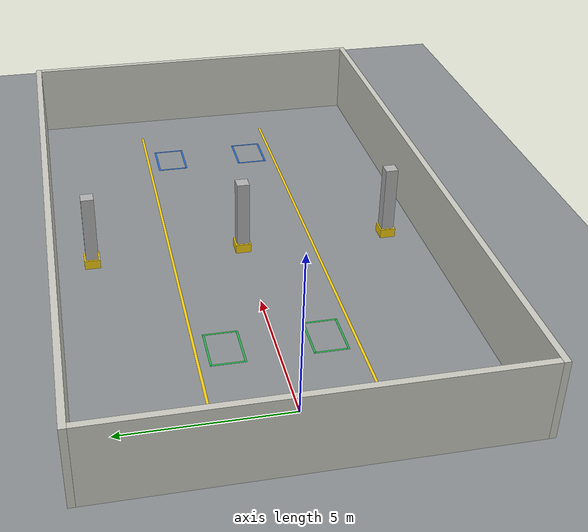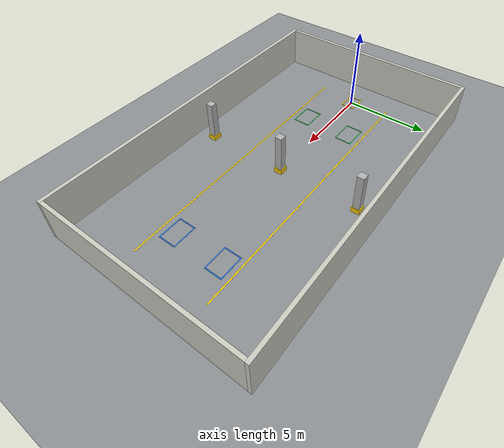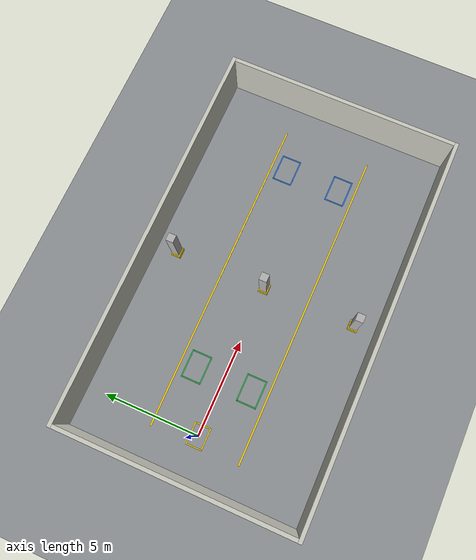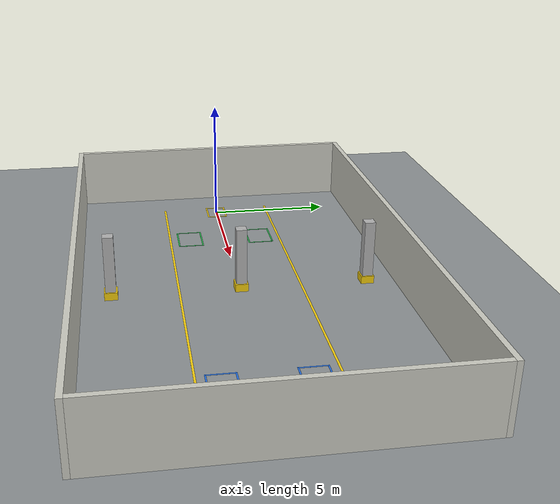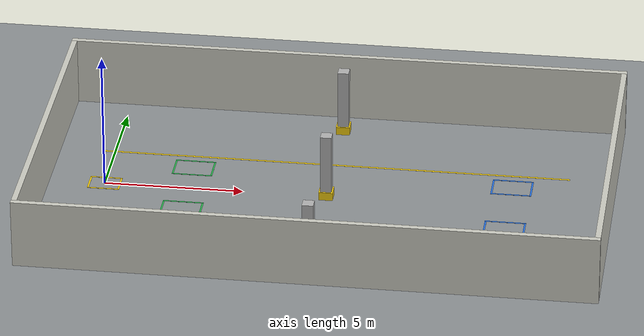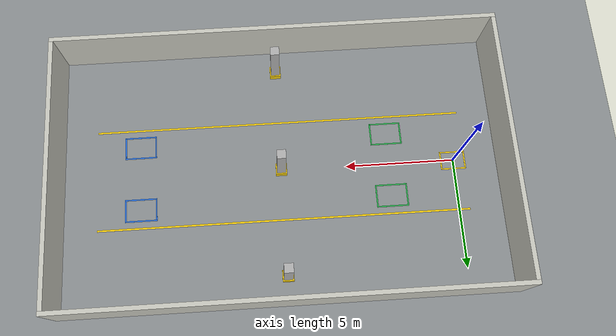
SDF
<sdf version="1.6">
 <world name="yektemak_warehouse">
  <gravity>0 0 -9.81</gravity>
  <plugin name="gazebo_ros_state" filename="libgazebo_ros_state.so">
   <ros><namespace>/gazebo</namespace></ros>
   <update_rate>20.0</update_rate>
  </plugin>
  <physics name="default_physics" type="ode">
   <max_step_size>0.001</max_step_size>
   <real_time_factor>1.0</real_time_factor>
   <real_time_update_rate>1000</real_time_update_rate>
  </physics>
  <scene>
   <ambient>0.55 0.55 0.55 1</ambient>
   <background>0.70 0.75 0.80 1</background>
   <shadows>true</shadows>
  </scene>
  <light type="directional" name="sun">
   <pose>0 0 10 0 0 0</pose>
   <diffuse>0.8 0.8 0.8 1</diffuse>
   <specular>0.2 0.2 0.2 1</specular>
   <direction>-0.4 0.3 -0.9</direction>
  </light>
  <model name="ground_plane">
   <static>true</static>
   <link name="link">
    <collision name="collision">
     <geometry><plane><normal>0 0 1</normal><size>60 60</size></plane></geometry>
     <surface><friction><ode><mu>1.0</mu><mu2>1.0</mu2></ode></friction></surface>
    </collision>
    <visual name="visual">
     <cast_shadows>false</cast_shadows>
     <geometry><plane><normal>0 0 1</normal><size>60 60</size></plane></geometry>
     <material>
      <ambient>0.44 0.46 0.46 1</ambient>
      <diffuse>0.55 0.57 0.58 1</diffuse>
      <specular>0.1 0.1 0.1 1</specular>
     </material>
    </visual>
   </link>
  </model>
  <model name="warehouse_building">
   <static>true</static>
   <link name="link">
    <collision name="wall_south_col">
     <pose>8 -6.1 1.25 0 0 0</pose>
     <geometry><box><size>20.4 0.2 2.5</size></box></geometry>
    </collision>
    <visual name="wall_south_vis">
     <pose>8 -6.1 1.25 0 0 0</pose>
     <geometry><box><size>20.4 0.2 2.5</size></box></geometry>
     <material>
      <ambient>0.64 0.64 0.61 1</ambient>
      <diffuse>0.8 0.8 0.76 1</diffuse>
      <specular>0.1 0.1 0.1 1</specular>
     </material>
    </visual>
    <collision name="wall_north_col">
     <pose>8 6.1 1.25 0 0 0</pose>
     <geometry><box><size>20.4 0.2 2.5</size></box></geometry>
    </collision>
    <visual name="wall_north_vis">
     <pose>8 6.1 1.25 0 0 0</pose>
     <geometry><box><size>20.4 0.2 2.5</size></box></geometry>
     <material>
      <ambient>0.64 0.64 0.61 1</ambient>
      <diffuse>0.8 0.8 0.76 1</diffuse>
      <specular>0.1 0.1 0.1 1</specular>
     </material>
    </visual>
    <collision name="wall_west_col">
     <pose>-2.1 0 1.25 0 0 0</pose>
     <geometry><box><size>0.2 12 2.5</size></box></geometry>
    </collision>
    <visual name="wall_west_vis">
     <pose>-2.1 0 1.25 0 0 0</pose>
     <geometry><box><size>0.2 12 2.5</size></box></geometry>
     <material>
      <ambient>0.64 0.64 0.61 1</ambient>
      <diffuse>0.8 0.8 0.76 1</diffuse>
      <specular>0.1 0.1 0.1 1</specular>
     </material>
    </visual>
    <collision name="wall_east_col">
     <pose>18.1 0 1.25 0 0 0</pose>
     <geometry><box><size>0.2 12 2.5</size></box></geometry>
    </collision>
    <visual name="wall_east_vis">
     <pose>18.1 0 1.25 0 0 0</pose>
     <geometry><box><size>0.2 12 2.5</size></box></geometry>
     <material>
      <ambient>0.64 0.64 0.61 1</ambient>
      <diffuse>0.8 0.8 0.76 1</diffuse>
      <specular>0.1 0.1 0.1 1</specular>
     </material>
    </visual>
    <collision name="column_0_col">
     <pose>8 0 1.25 0 0 0</pose>
     <geometry><box><size>0.4 0.4 2.5</size></box></geometry>
    </collision>
    <visual name="column_0_vis">
     <pose>8 0 1.25 0 0 0</pose>
     <geometry><box><size>0.4 0.4 2.5</size></box></geometry>
     <material>
      <ambient>0.56 0.56 0.56 1</ambient>
      <diffuse>0.7 0.7 0.7 1</diffuse>
      <specular>0.1 0.1 0.1 1</specular>
     </material>
    </visual>
    <collision name="column_guard_0_col">
     <pose>8 0 0.15 0 0 0</pose>
     <geometry><box><size>0.5 0.5 0.3</size></box></geometry>
    </collision>
    <visual name="column_guard_0_vis">
     <pose>8 0 0.15 0 0 0</pose>
     <geometry><box><size>0.5 0.5 0.3</size></box></geometry>
     <material>
      <ambient>0.76 0.64 0.04 1</ambient>
      <diffuse>0.95 0.8 0.05 1</diffuse>
      <specular>0.1 0.1 0.1 1</specular>
     </material>
    </visual>
    <collision name="column_1_col">
     <pose>8 4.9 1.25 0 0 0</pose>
     <geometry><box><size>0.4 0.4 2.5</size></box></geometry>
    </collision>
    <visual name="column_1_vis">
     <pose>8 4.9 1.25 0 0 0</pose>
     <geometry><box><size>0.4 0.4 2.5</size></box></geometry>
     <material>
      <ambient>0.56 0.56 0.56 1</ambient>
      <diffuse>0.7 0.7 0.7 1</diffuse>
      <specular>0.1 0.1 0.1 1</specular>
     </material>
    </visual>
    <collision name="column_guard_1_col">
     <pose>8 4.9 0.15 0 0 0</pose>
     <geometry><box><size>0.5 0.5 0.3</size></box></geometry>
    </collision>
    <visual name="column_guard_1_vis">
     <pose>8 4.9 0.15 0 0 0</pose>
     <geometry><box><size>0.5 0.5 0.3</size></box></geometry>
     <material>
      <ambient>0.76 0.64 0.04 1</ambient>
      <diffuse>0.95 0.8 0.05 1</diffuse>
      <specular>0.1 0.1 0.1 1</specular>
     </material>
    </visual>
    <collision name="column_2_col">
     <pose>8 -4.9 1.25 0 0 0</pose>
     <geometry><box><size>0.4 0.4 2.5</size></box></geometry>
    </collision>
    <visual name="column_2_vis">
     <pose>8 -4.9 1.25 0 0 0</pose>
     <geometry><box><size>0.4 0.4 2.5</size></box></geometry>
     <material>
      <ambient>0.56 0.56 0.56 1</ambient>
      <diffuse>0.7 0.7 0.7 1</diffuse>
      <specular>0.1 0.1 0.1 1</specular>
     </material>
    </visual>
    <collision name="column_guard_2_col">
     <pose>8 -4.9 0.15 0 0 0</pose>
     <geometry><box><size>0.5 0.5 0.3</size></box></geometry>
    </collision>
    <visual name="column_guard_2_vis">
     <pose>8 -4.9 0.15 0 0 0</pose>
     <geometry><box><size>0.5 0.5 0.3</size></box></geometry>
     <material>
      <ambient>0.76 0.64 0.04 1</ambient>
      <diffuse>0.95 0.8 0.05 1</diffuse>
      <specular>0.1 0.1 0.1 1</specular>
     </material>
    </visual>
   </link>
  </model>
  <model name="floor_markings">
   <static>true</static>
   <link name="link">
    <visual name="pick_1_a_vis">
     <pose>3 2 0.002 0 0 0</pose>
     <geometry><box><size>1.46 0.06 0.002</size></box></geometry>
     <material>
      <ambient>0.12 0.56 0.24 1</ambient>
      <diffuse>0.15 0.7 0.3 1</diffuse>
      <specular>0.1 0.1 0.1 1</specular>
     </material>
    </visual>
    <visual name="pick_1_b_vis">
     <pose>3 1 0.002 0 0 0</pose>
     <geometry><box><size>1.46 0.06 0.002</size></box></geometry>
     <material>
      <ambient>0.12 0.56 0.24 1</ambient>
      <diffuse>0.15 0.7 0.3 1</diffuse>
      <specular>0.1 0.1 0.1 1</specular>
     </material>
    </visual>
    <visual name="pick_1_c_vis">
     <pose>3.7 1.5 0.002 0 0 0</pose>
     <geometry><box><size>0.06 1 0.002</size></box></geometry>
     <material>
      <ambient>0.12 0.56 0.24 1</ambient>
      <diffuse>0.15 0.7 0.3 1</diffuse>
      <specular>0.1 0.1 0.1 1</specular>
     </material>
    </visual>
    <visual name="pick_1_d_vis">
     <pose>2.3 1.5 0.002 0 0 0</pose>
     <geometry><box><size>0.06 1 0.002</size></box></geometry>
     <material>
      <ambient>0.12 0.56 0.24 1</ambient>
      <diffuse>0.15 0.7 0.3 1</diffuse>
      <specular>0.1 0.1 0.1 1</specular>
     </material>
    </visual>
    <visual name="pick_2_a_vis">
     <pose>3 -1 0.002 0 0 0</pose>
     <geometry><box><size>1.46 0.06 0.002</size></box></geometry>
     <material>
      <ambient>0.12 0.56 0.24 1</ambient>
      <diffuse>0.15 0.7 0.3 1</diffuse>
      <specular>0.1 0.1 0.1 1</specular>
     </material>
    </visual>
    <visual name="pick_2_b_vis">
     <pose>3 -2 0.002 0 0 0</pose>
     <geometry><box><size>1.46 0.06 0.002</size></box></geometry>
     <material>
      <ambient>0.12 0.56 0.24 1</ambient>
      <diffuse>0.15 0.7 0.3 1</diffuse>
      <specular>0.1 0.1 0.1 1</specular>
     </material>
    </visual>
    <visual name="pick_2_c_vis">
     <pose>3.7 -1.5 0.002 0 0 0</pose>
     <geometry><box><size>0.06 1 0.002</size></box></geometry>
     <material>
      <ambient>0.12 0.56 0.24 1</ambient>
      <diffuse>0.15 0.7 0.3 1</diffuse>
      <specular>0.1 0.1 0.1 1</specular>
     </material>
    </visual>
    <visual name="pick_2_d_vis">
     <pose>2.3 -1.5 0.002 0 0 0</pose>
     <geometry><box><size>0.06 1 0.002</size></box></geometry>
     <material>
      <ambient>0.12 0.56 0.24 1</ambient>
      <diffuse>0.15 0.7 0.3 1</diffuse>
      <specular>0.1 0.1 0.1 1</specular>
     </material>
    </visual>
    <visual name="drop_1_a_vis">
     <pose>14.5 2 0.002 0 0 0</pose>
     <geometry><box><size>1.46 0.06 0.002</size></box></geometry>
     <material>
      <ambient>0.12 0.36 0.72 1</ambient>
      <diffuse>0.15 0.45 0.9 1</diffuse>
      <specular>0.1 0.1 0.1 1</specular>
     </material>
    </visual>
    <visual name="drop_1_b_vis">
     <pose>14.5 1 0.002 0 0 0</pose>
     <geometry><box><size>1.46 0.06 0.002</size></box></geometry>
     <material>
      <ambient>0.12 0.36 0.72 1</ambient>
      <diffuse>0.15 0.45 0.9 1</diffuse>
      <specular>0.1 0.1 0.1 1</specular>
     </material>
    </visual>
    <visual name="drop_1_c_vis">
     <pose>15.2 1.5 0.002 0 0 0</pose>
     <geometry><box><size>0.06 1 0.002</size></box></geometry>
     <material>
      <ambient>0.12 0.36 0.72 1</ambient>
      <diffuse>0.15 0.45 0.9 1</diffuse>
      <specular>0.1 0.1 0.1 1</specular>
     </material>
    </visual>
    <visual name="drop_1_d_vis">
     <pose>13.8 1.5 0.002 0 0 0</pose>
     <geometry><box><size>0.06 1 0.002</size></box></geometry>
     <material>
      <ambient>0.12 0.36 0.72 1</ambient>
      <diffuse>0.15 0.45 0.9 1</diffuse>
      <specular>0.1 0.1 0.1 1</specular>
     </material>
    </visual>
    <visual name="drop_2_a_vis">
     <pose>14.5 -1 0.002 0 0 0</pose>
     <geometry><box><size>1.46 0.06 0.002</size></box></geometry>
     <material>
      <ambient>0.12 0.36 0.72 1</ambient>
      <diffuse>0.15 0.45 0.9 1</diffuse>
      <specular>0.1 0.1 0.1 1</specular>
     </material>
    </visual>
    <visual name="drop_2_b_vis">
     <pose>14.5 -2 0.002 0 0 0</pose>
     <geometry><box><size>1.46 0.06 0.002</size></box></geometry>
     <material>
      <ambient>0.12 0.36 0.72 1</ambient>
      <diffuse>0.15 0.45 0.9 1</diffuse>
      <specular>0.1 0.1 0.1 1</specular>
     </material>
    </visual>
    <visual name="drop_2_c_vis">
     <pose>15.2 -1.5 0.002 0 0 0</pose>
     <geometry><box><size>0.06 1 0.002</size></box></geometry>
     <material>
      <ambient>0.12 0.36 0.72 1</ambient>
      <diffuse>0.15 0.45 0.9 1</diffuse>
      <specular>0.1 0.1 0.1 1</specular>
     </material>
    </visual>
    <visual name="drop_2_d_vis">
     <pose>13.8 -1.5 0.002 0 0 0</pose>
     <geometry><box><size>0.06 1 0.002</size></box></geometry>
     <material>
      <ambient>0.12 0.36 0.72 1</ambient>
      <diffuse>0.15 0.45 0.9 1</diffuse>
      <specular>0.1 0.1 0.1 1</specular>
     </material>
    </visual>
    <visual name="home_a_vis">
     <pose>0 0.4 0.002 0 0 0</pose>
     <geometry><box><size>1.16 0.06 0.002</size></box></geometry>
     <material>
      <ambient>0.78 0.66 0.04 1</ambient>
      <diffuse>0.98 0.82 0.05 1</diffuse>
      <specular>0.1 0.1 0.1 1</specular>
     </material>
    </visual>
    <visual name="home_b_vis">
     <pose>0 -0.4 0.002 0 0 0</pose>
     <geometry><box><size>1.16 0.06 0.002</size></box></geometry>
     <material>
      <ambient>0.78 0.66 0.04 1</ambient>
      <diffuse>0.98 0.82 0.05 1</diffuse>
      <specular>0.1 0.1 0.1 1</specular>
     </material>
    </visual>
    <visual name="home_c_vis">
     <pose>0.55 0 0.002 0 0 0</pose>
     <geometry><box><size>0.06 0.8 0.002</size></box></geometry>
     <material>
      <ambient>0.78 0.66 0.04 1</ambient>
      <diffuse>0.98 0.82 0.05 1</diffuse>
      <specular>0.1 0.1 0.1 1</specular>
     </material>
    </visual>
    <visual name="home_d_vis">
     <pose>-0.55 0 0.002 0 0 0</pose>
     <geometry><box><size>0.06 0.8 0.002</size></box></geometry>
     <material>
      <ambient>0.78 0.66 0.04 1</ambient>
      <diffuse>0.98 0.82 0.05 1</diffuse>
      <specular>0.1 0.1 0.1 1</specular>
     </material>
    </visual>
    <visual name="lane_0_vis">
     <pose>8 2.35 0.002 0 0 0</pose>
     <geometry><box><size>17 0.08 0.002</size></box></geometry>
     <material>
      <ambient>0.78 0.66 0.04 1</ambient>
      <diffuse>0.98 0.82 0.05 1</diffuse>
      <specular>0.1 0.1 0.1 1</specular>
     </material>
    </visual>
    <visual name="lane_1_vis">
     <pose>8 -2.35 0.002 0 0 0</pose>
     <geometry><box><size>17 0.08 0.002</size></box></geometry>
     <material>
      <ambient>0.78 0.66 0.04 1</ambient>
      <diffuse>0.98 0.82 0.05 1</diffuse>
      <specular>0.1 0.1 0.1 1</specular>
     </material>
    </visual>
   </link>
  </model>
 </world>
</sdf>
